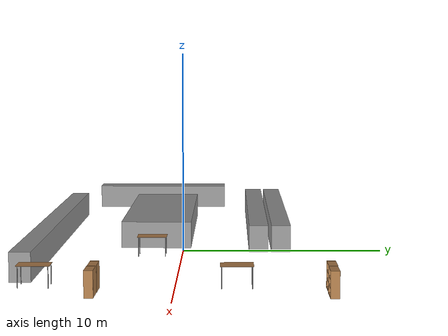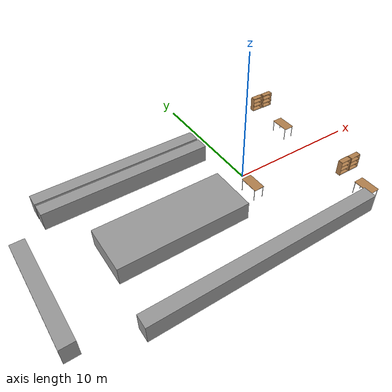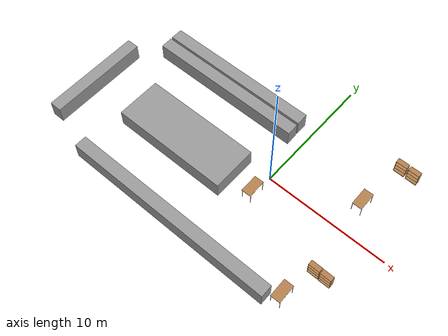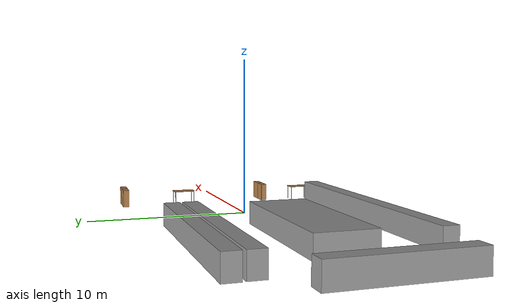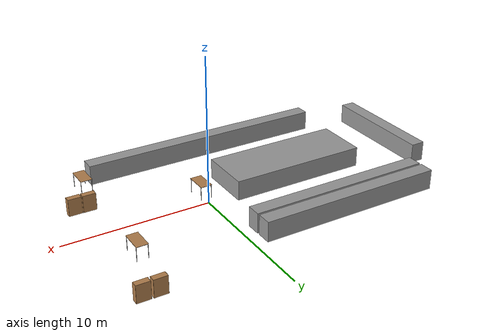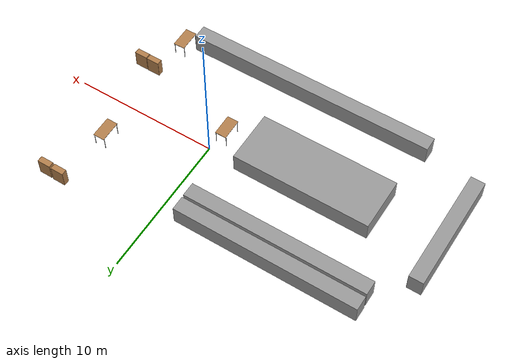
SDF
<?xml version='1.0'?>
<sdf version='1.7'>
  <model name='model_editor'>
    <link name='link_0'>
      <inertial>
        <mass>18.0708</mass>
        <inertia>
          <ixx>4.46291</ixx>
          <ixy>0</ixy>
          <ixz>0</ixz>
          <iyy>253.408</iyy>
          <iyz>0</iyz>
          <izz>251.957</izz>
        </inertia>
        <pose>0 0 0 0 -0 0</pose>
      </inertial>
      <pose>-7.47746 3.85814 0.409871 0 -0 0</pose>
      <visual name='visual'>
        <pose>0 0 0 0 -0 0</pose>
        <geometry>
          <box>
            <size>12.8963 1 1.40129</size>
          </box>
        </geometry>
        <material>
          <lighting>1</lighting>
          <script>
            <uri>file://media/materials/scripts/gazebo.material</uri>
            <name>Gazebo/Grey</name>
          </script>
          <shader type='pixel'/>
        </material>
        <transparency>0</transparency>
        <cast_shadows>1</cast_shadows>
      </visual>
      <collision name='collision'>
        <laser_retro>0</laser_retro>
        <max_contacts>10</max_contacts>
        <pose>0 0 0 0 -0 0</pose>
        <geometry>
          <box>
            <size>12.8963 1 1.40129</size>
          </box>
        </geometry>
        <surface>
          <friction>
            <ode>
              <mu>1</mu>
              <mu2>1</mu2>
              <fdir1>0 0 0</fdir1>
              <slip1>0</slip1>
              <slip2>0</slip2>
            </ode>
            <torsional>
              <coefficient>1</coefficient>
              <patch_radius>0</patch_radius>
              <surface_radius>0</surface_radius>
              <use_patch_radius>1</use_patch_radius>
              <ode>
                <slip>0</slip>
              </ode>
            </torsional>
          </friction>
          <bounce>
            <restitution_coefficient>0</restitution_coefficient>
            <threshold>1e+06</threshold>
          </bounce>
          <contact>
            <collide_without_contact>0</collide_without_contact>
            <collide_without_contact_bitmask>1</collide_without_contact_bitmask>
            <collide_bitmask>1</collide_bitmask>
            <ode>
              <soft_cfm>0</soft_cfm>
              <soft_erp>0.2</soft_erp>
              <kp>1e+13</kp>
              <kd>1</kd>
              <max_vel>0.01</max_vel>
              <min_depth>0</min_depth>
            </ode>
            <bullet>
              <split_impulse>1</split_impulse>
              <split_impulse_penetration_threshold>-0.01</split_impulse_penetration_threshold>
              <soft_cfm>0</soft_cfm>
              <soft_erp>0.2</soft_erp>
              <kp>1e+13</kp>
              <kd>1</kd>
            </bullet>
          </contact>
        </surface>
      </collision>
    </link>
    <link name='link_0_clone'>
      <inertial>
        <mass>18.0708</mass>
        <inertia>
          <ixx>4.46291</ixx>
          <ixy>0</ixy>
          <ixz>0</ixz>
          <iyy>253.408</iyy>
          <iyz>0</iyz>
          <izz>251.957</izz>
        </inertia>
        <pose>0 0 0 0 -0 0</pose>
      </inertial>
      <pose>-7.49983 5.0254 0.40987 0 -0 0</pose>
      <visual name='visual'>
        <pose>0 0 0 0 -0 0</pose>
        <geometry>
          <box>
            <size>12.8963 1 1.40129</size>
          </box>
        </geometry>
        <material>
          <lighting>1</lighting>
          <script>
            <uri>file://media/materials/scripts/gazebo.material</uri>
            <name>Gazebo/Grey</name>
          </script>
          <shader type='pixel'/>
        </material>
        <transparency>0</transparency>
        <cast_shadows>1</cast_shadows>
      </visual>
      <collision name='collision'>
        <laser_retro>0</laser_retro>
        <max_contacts>10</max_contacts>
        <pose>0 0 0 0 -0 0</pose>
        <geometry>
          <box>
            <size>12.8963 1 1.40129</size>
          </box>
        </geometry>
        <surface>
          <friction>
            <ode>
              <mu>1</mu>
              <mu2>1</mu2>
              <fdir1>0 0 0</fdir1>
              <slip1>0</slip1>
              <slip2>0</slip2>
            </ode>
            <torsional>
              <coefficient>1</coefficient>
              <patch_radius>0</patch_radius>
              <surface_radius>0</surface_radius>
              <use_patch_radius>1</use_patch_radius>
              <ode>
                <slip>0</slip>
              </ode>
            </torsional>
          </friction>
          <bounce>
            <restitution_coefficient>0</restitution_coefficient>
            <threshold>1e+06</threshold>
          </bounce>
          <contact>
            <collide_without_contact>0</collide_without_contact>
            <collide_without_contact_bitmask>1</collide_without_contact_bitmask>
            <collide_bitmask>1</collide_bitmask>
            <ode>
              <soft_cfm>0</soft_cfm>
              <soft_erp>0.2</soft_erp>
              <kp>1e+13</kp>
              <kd>1</kd>
              <max_vel>0.01</max_vel>
              <min_depth>0</min_depth>
            </ode>
            <bullet>
              <split_impulse>1</split_impulse>
              <split_impulse_penetration_threshold>-0.01</split_impulse_penetration_threshold>
              <soft_cfm>0</soft_cfm>
              <soft_erp>0.2</soft_erp>
              <kp>1e+13</kp>
              <kd>1</kd>
            </bullet>
          </contact>
        </surface>
      </collision>
    </link>
    <link name='link_0_clone_0'>
      <inertial>
        <mass>24.7173</mass>
        <inertia>
          <ixx>6.10438</ixx>
          <ixy>0</ixy>
          <ixz>0</ixz>
          <iyy>644.956</iyy>
          <iyz>0</iyz>
          <izz>642.971</izz>
        </inertia>
        <pose>0 0 0 0 -0 0</pose>
      </inertial>
      <pose>-3.33593 -7.13954 0.40987 0 -0 0</pose>
      <visual name='visual'>
        <pose>0 0 0 0 -0 0</pose>
        <geometry>
          <box>
            <size>17.6396 1 1.40129</size>
          </box>
        </geometry>
        <material>
          <lighting>1</lighting>
          <script>
            <uri>file://media/materials/scripts/gazebo.material</uri>
            <name>Gazebo/Grey</name>
          </script>
          <shader type='pixel'/>
        </material>
        <transparency>0</transparency>
        <cast_shadows>1</cast_shadows>
      </visual>
      <collision name='collision'>
        <laser_retro>0</laser_retro>
        <max_contacts>10</max_contacts>
        <pose>0 0 0 0 -0 0</pose>
        <geometry>
          <box>
            <size>17.6396 1 1.40129</size>
          </box>
        </geometry>
        <surface>
          <friction>
            <ode>
              <mu>1</mu>
              <mu2>1</mu2>
              <fdir1>0 0 0</fdir1>
              <slip1>0</slip1>
              <slip2>0</slip2>
            </ode>
            <torsional>
              <coefficient>1</coefficient>
              <patch_radius>0</patch_radius>
              <surface_radius>0</surface_radius>
              <use_patch_radius>1</use_patch_radius>
              <ode>
                <slip>0</slip>
              </ode>
            </torsional>
          </friction>
          <bounce>
            <restitution_coefficient>0</restitution_coefficient>
            <threshold>1e+06</threshold>
          </bounce>
          <contact>
            <collide_without_contact>0</collide_without_contact>
            <collide_without_contact_bitmask>1</collide_without_contact_bitmask>
            <collide_bitmask>1</collide_bitmask>
            <ode>
              <soft_cfm>0</soft_cfm>
              <soft_erp>0.2</soft_erp>
              <kp>1e+13</kp>
              <kd>1</kd>
              <max_vel>0.01</max_vel>
              <min_depth>0</min_depth>
            </ode>
            <bullet>
              <split_impulse>1</split_impulse>
              <split_impulse_penetration_threshold>-0.01</split_impulse_penetration_threshold>
              <soft_cfm>0</soft_cfm>
              <soft_erp>0.2</soft_erp>
              <kp>1e+13</kp>
              <kd>1</kd>
            </bullet>
          </contact>
        </surface>
      </collision>
    </link>
    <link name='link_0_clone_1'>
      <inertial>
        <mass>50.1155</mass>
        <inertia>
          <ixx>65.1768</ixx>
          <ixy>0</ixy>
          <ixz>0</ixz>
          <iyy>399.775</iyy>
          <iyz>0</iyz>
          <izz>448.55</izz>
        </inertia>
        <pose>0 0 0 0 -0 0</pose>
      </inertial>
      <pose>-6.90095 -1.54559 0.40987 0 -0 0</pose>
      <visual name='visual'>
        <pose>0 0 0 0 -0 0</pose>
        <geometry>
          <box>
            <size>9.68304 3.69361 1.40129</size>
          </box>
        </geometry>
        <material>
          <lighting>1</lighting>
          <script>
            <uri>file://media/materials/scripts/gazebo.material</uri>
            <name>Gazebo/Grey</name>
          </script>
          <shader type='pixel'/>
        </material>
        <transparency>0</transparency>
        <cast_shadows>1</cast_shadows>
      </visual>
      <collision name='collision'>
        <laser_retro>0</laser_retro>
        <max_contacts>10</max_contacts>
        <pose>0 0 0 0 -0 0</pose>
        <geometry>
          <box>
            <size>9.68304 3.69361 1.40129</size>
          </box>
        </geometry>
        <surface>
          <friction>
            <ode>
              <mu>1</mu>
              <mu2>1</mu2>
              <fdir1>0 0 0</fdir1>
              <slip1>0</slip1>
              <slip2>0</slip2>
            </ode>
            <torsional>
              <coefficient>1</coefficient>
              <patch_radius>0</patch_radius>
              <surface_radius>0</surface_radius>
              <use_patch_radius>1</use_patch_radius>
              <ode>
                <slip>0</slip>
              </ode>
            </torsional>
          </friction>
          <bounce>
            <restitution_coefficient>0</restitution_coefficient>
            <threshold>1e+06</threshold>
          </bounce>
          <contact>
            <collide_without_contact>0</collide_without_contact>
            <collide_without_contact_bitmask>1</collide_without_contact_bitmask>
            <collide_bitmask>1</collide_bitmask>
            <ode>
              <soft_cfm>0</soft_cfm>
              <soft_erp>0.2</soft_erp>
              <kp>1e+13</kp>
              <kd>1</kd>
              <max_vel>0.01</max_vel>
              <min_depth>0</min_depth>
            </ode>
            <bullet>
              <split_impulse>1</split_impulse>
              <split_impulse_penetration_threshold>-0.01</split_impulse_penetration_threshold>
              <soft_cfm>0</soft_cfm>
              <soft_erp>0.2</soft_erp>
              <kp>1e+13</kp>
              <kd>1</kd>
            </bullet>
          </contact>
        </surface>
      </collision>
    </link>
    <link name='link_0_clone_2'>
      <inertial>
        <mass>11.5629</mass>
        <inertia>
          <ixx>2.85567</ixx>
          <ixy>0</ixy>
          <ixz>0</ixz>
          <iyy>67.506</iyy>
          <iyz>0</iyz>
          <izz>66.5775</izz>
        </inertia>
        <pose>0 0 0 0 -0 0</pose>
      </inertial>
      <pose>-15.8863 -2.1349 0.40987 0 0 -1.57051</pose>
      <visual name='visual'>
        <pose>0 0 0 0 -0 0</pose>
        <geometry>
          <box>
            <size>8.25192 1 1.40129</size>
          </box>
        </geometry>
        <material>
          <lighting>1</lighting>
          <script>
            <uri>file://media/materials/scripts/gazebo.material</uri>
            <name>Gazebo/Grey</name>
          </script>
          <shader type='pixel'/>
        </material>
        <transparency>0</transparency>
        <cast_shadows>1</cast_shadows>
      </visual>
      <collision name='collision'>
        <laser_retro>0</laser_retro>
        <max_contacts>10</max_contacts>
        <pose>0 0 0 0 -0 0</pose>
        <geometry>
          <box>
            <size>8.25192 1 1.40129</size>
          </box>
        </geometry>
        <surface>
          <friction>
            <ode>
              <mu>1</mu>
              <mu2>1</mu2>
              <fdir1>0 0 0</fdir1>
              <slip1>0</slip1>
              <slip2>0</slip2>
            </ode>
            <torsional>
              <coefficient>1</coefficient>
              <patch_radius>0</patch_radius>
              <surface_radius>0</surface_radius>
              <use_patch_radius>1</use_patch_radius>
              <ode>
                <slip>0</slip>
              </ode>
            </torsional>
          </friction>
          <bounce>
            <restitution_coefficient>0</restitution_coefficient>
            <threshold>1e+06</threshold>
          </bounce>
          <contact>
            <collide_without_contact>0</collide_without_contact>
            <collide_without_contact_bitmask>1</collide_without_contact_bitmask>
            <collide_bitmask>1</collide_bitmask>
            <ode>
              <soft_cfm>0</soft_cfm>
              <soft_erp>0.2</soft_erp>
              <kp>1e+13</kp>
              <kd>1</kd>
              <max_vel>0.01</max_vel>
              <min_depth>0</min_depth>
            </ode>
            <bullet>
              <split_impulse>1</split_impulse>
              <split_impulse_penetration_threshold>-0.01</split_impulse_penetration_threshold>
              <soft_cfm>0</soft_cfm>
              <soft_erp>0.2</soft_erp>
              <kp>1e+13</kp>
              <kd>1</kd>
            </bullet>
          </contact>
        </surface>
      </collision>
    </link>
    <model name='bookshelf'>
      <static>1</static>
      <link name='link'>
        <inertial>
          <mass>1</mass>
        </inertial>
        <collision name='back'>
          <pose>0 0.005 0.6 0 -0 0</pose>
          <geometry>
            <box>
              <size>0.9 0.01 1.2</size>
            </box>
          </geometry>
        </collision>
        <visual name='visual1'>
          <pose>0 0.005 0.6 0 -0 0</pose>
          <geometry>
            <box>
              <size>0.9 0.01 1.2</size>
            </box>
          </geometry>
          <material>
            <script>
              <uri>file://media/materials/scripts/gazebo.material</uri>
              <name>Gazebo/Wood</name>
            </script>
          </material>
        </visual>
        <collision name='left_side'>
          <pose>0.45 -0.195 0.6 0 -0 0</pose>
          <geometry>
            <box>
              <size>0.02 0.4 1.2</size>
            </box>
          </geometry>
        </collision>
        <visual name='visual2'>
          <pose>0.45 -0.195 0.6 0 -0 0</pose>
          <geometry>
            <box>
              <size>0.02 0.4 1.2</size>
            </box>
          </geometry>
          <material>
            <script>
              <uri>file://media/materials/scripts/gazebo.material</uri>
              <name>Gazebo/Wood</name>
            </script>
          </material>
        </visual>
        <collision name='right_side'>
          <pose>-0.45 -0.195 0.6 0 -0 0</pose>
          <geometry>
            <box>
              <size>0.02 0.4 1.2</size>
            </box>
          </geometry>
        </collision>
        <visual name='visual3'>
          <pose>-0.45 -0.195 0.6 0 -0 0</pose>
          <geometry>
            <box>
              <size>0.02 0.4 1.2</size>
            </box>
          </geometry>
          <material>
            <script>
              <uri>file://media/materials/scripts/gazebo.material</uri>
              <name>Gazebo/Wood</name>
            </script>
          </material>
        </visual>
        <collision name='bottom'>
          <pose>0 -0.195 0.03 0 -0 0</pose>
          <geometry>
            <box>
              <size>0.88 0.4 0.06</size>
            </box>
          </geometry>
        </collision>
        <visual name='visual4'>
          <pose>0 -0.195 0.03 0 -0 0</pose>
          <geometry>
            <box>
              <size>0.88 0.4 0.06</size>
            </box>
          </geometry>
          <material>
            <script>
              <uri>file://media/materials/scripts/gazebo.material</uri>
              <name>Gazebo/Wood</name>
            </script>
          </material>
        </visual>
        <collision name='top'>
          <pose>0 -0.195 1.19 0 -0 0</pose>
          <geometry>
            <box>
              <size>0.88 0.4 0.02</size>
            </box>
          </geometry>
        </collision>
        <visual name='visual5'>
          <pose>0 -0.195 1.19 0 -0 0</pose>
          <geometry>
            <box>
              <size>0.88 0.4 0.02</size>
            </box>
          </geometry>
          <material>
            <script>
              <uri>file://media/materials/scripts/gazebo.material</uri>
              <name>Gazebo/Wood</name>
            </script>
          </material>
        </visual>
        <collision name='low_shelf'>
          <pose>0 -0.195 0.43 0 -0 0</pose>
          <geometry>
            <box>
              <size>0.88 0.4 0.02</size>
            </box>
          </geometry>
        </collision>
        <visual name='visual6'>
          <pose>0 -0.195 0.43 0 -0 0</pose>
          <geometry>
            <box>
              <size>0.88 0.4 0.02</size>
            </box>
          </geometry>
          <material>
            <script>
              <uri>file://media/materials/scripts/gazebo.material</uri>
              <name>Gazebo/Wood</name>
            </script>
          </material>
        </visual>
        <collision name='high_shelf'>
          <pose>0 -0.195 0.8 0 -0 0</pose>
          <geometry>
            <box>
              <size>0.88 0.4 0.02</size>
            </box>
          </geometry>
        </collision>
        <visual name='visual7'>
          <pose>0 -0.195 0.8 0 -0 0</pose>
          <geometry>
            <box>
              <size>0.88 0.4 0.02</size>
            </box>
          </geometry>
          <material>
            <script>
              <uri>file://media/materials/scripts/gazebo.material</uri>
              <name>Gazebo/Wood</name>
            </script>
          </material>
        </visual>
      </link>
      <pose>6.78918 -3.41722 -0.292765 0 -0 0</pose>
    </model>
    <model name='bookshelf_clone'>
      <static>1</static>
      <link name='link'>
        <inertial>
          <mass>1</mass>
        </inertial>
        <collision name='back'>
          <pose>0 0.005 0.6 0 -0 0</pose>
          <geometry>
            <box>
              <size>0.9 0.01 1.2</size>
            </box>
          </geometry>
        </collision>
        <visual name='visual1'>
          <pose>0 0.005 0.6 0 -0 0</pose>
          <geometry>
            <box>
              <size>0.9 0.01 1.2</size>
            </box>
          </geometry>
          <material>
            <script>
              <uri>file://media/materials/scripts/gazebo.material</uri>
              <name>Gazebo/Wood</name>
            </script>
          </material>
        </visual>
        <collision name='left_side'>
          <pose>0.45 -0.195 0.6 0 -0 0</pose>
          <geometry>
            <box>
              <size>0.02 0.4 1.2</size>
            </box>
          </geometry>
        </collision>
        <visual name='visual2'>
          <pose>0.45 -0.195 0.6 0 -0 0</pose>
          <geometry>
            <box>
              <size>0.02 0.4 1.2</size>
            </box>
          </geometry>
          <material>
            <script>
              <uri>file://media/materials/scripts/gazebo.material</uri>
              <name>Gazebo/Wood</name>
            </script>
          </material>
        </visual>
        <collision name='right_side'>
          <pose>-0.45 -0.195 0.6 0 -0 0</pose>
          <geometry>
            <box>
              <size>0.02 0.4 1.2</size>
            </box>
          </geometry>
        </collision>
        <visual name='visual3'>
          <pose>-0.45 -0.195 0.6 0 -0 0</pose>
          <geometry>
            <box>
              <size>0.02 0.4 1.2</size>
            </box>
          </geometry>
          <material>
            <script>
              <uri>file://media/materials/scripts/gazebo.material</uri>
              <name>Gazebo/Wood</name>
            </script>
          </material>
        </visual>
        <collision name='bottom'>
          <pose>0 -0.195 0.03 0 -0 0</pose>
          <geometry>
            <box>
              <size>0.88 0.4 0.06</size>
            </box>
          </geometry>
        </collision>
        <visual name='visual4'>
          <pose>0 -0.195 0.03 0 -0 0</pose>
          <geometry>
            <box>
              <size>0.88 0.4 0.06</size>
            </box>
          </geometry>
          <material>
            <script>
              <uri>file://media/materials/scripts/gazebo.material</uri>
              <name>Gazebo/Wood</name>
            </script>
          </material>
        </visual>
        <collision name='top'>
          <pose>0 -0.195 1.19 0 -0 0</pose>
          <geometry>
            <box>
              <size>0.88 0.4 0.02</size>
            </box>
          </geometry>
        </collision>
        <visual name='visual5'>
          <pose>0 -0.195 1.19 0 -0 0</pose>
          <geometry>
            <box>
              <size>0.88 0.4 0.02</size>
            </box>
          </geometry>
          <material>
            <script>
              <uri>file://media/materials/scripts/gazebo.material</uri>
              <name>Gazebo/Wood</name>
            </script>
          </material>
        </visual>
        <collision name='low_shelf'>
          <pose>0 -0.195 0.43 0 -0 0</pose>
          <geometry>
            <box>
              <size>0.88 0.4 0.02</size>
            </box>
          </geometry>
        </collision>
        <visual name='visual6'>
          <pose>0 -0.195 0.43 0 -0 0</pose>
          <geometry>
            <box>
              <size>0.88 0.4 0.02</size>
            </box>
          </geometry>
          <material>
            <script>
              <uri>file://media/materials/scripts/gazebo.material</uri>
              <name>Gazebo/Wood</name>
            </script>
          </material>
        </visual>
        <collision name='high_shelf'>
          <pose>0 -0.195 0.8 0 -0 0</pose>
          <geometry>
            <box>
              <size>0.88 0.4 0.02</size>
            </box>
          </geometry>
        </collision>
        <visual name='visual7'>
          <pose>0 -0.195 0.8 0 -0 0</pose>
          <geometry>
            <box>
              <size>0.88 0.4 0.02</size>
            </box>
          </geometry>
          <material>
            <script>
              <uri>file://media/materials/scripts/gazebo.material</uri>
              <name>Gazebo/Wood</name>
            </script>
          </material>
        </visual>
      </link>
      <pose>6.74104 7.03907 -0.292765 0 -0 0</pose>
    </model>
    <model name='bookshelf_clone_0'>
      <static>1</static>
      <link name='link'>
        <inertial>
          <mass>1</mass>
        </inertial>
        <collision name='back'>
          <pose>0 0.005 0.6 0 -0 0</pose>
          <geometry>
            <box>
              <size>0.9 0.01 1.2</size>
            </box>
          </geometry>
        </collision>
        <visual name='visual1'>
          <pose>0 0.005 0.6 0 -0 0</pose>
          <geometry>
            <box>
              <size>0.9 0.01 1.2</size>
            </box>
          </geometry>
          <material>
            <script>
              <uri>file://media/materials/scripts/gazebo.material</uri>
              <name>Gazebo/Wood</name>
            </script>
          </material>
        </visual>
        <collision name='left_side'>
          <pose>0.45 -0.195 0.6 0 -0 0</pose>
          <geometry>
            <box>
              <size>0.02 0.4 1.2</size>
            </box>
          </geometry>
        </collision>
        <visual name='visual2'>
          <pose>0.45 -0.195 0.6 0 -0 0</pose>
          <geometry>
            <box>
              <size>0.02 0.4 1.2</size>
            </box>
          </geometry>
          <material>
            <script>
              <uri>file://media/materials/scripts/gazebo.material</uri>
              <name>Gazebo/Wood</name>
            </script>
          </material>
        </visual>
        <collision name='right_side'>
          <pose>-0.45 -0.195 0.6 0 -0 0</pose>
          <geometry>
            <box>
              <size>0.02 0.4 1.2</size>
            </box>
          </geometry>
        </collision>
        <visual name='visual3'>
          <pose>-0.45 -0.195 0.6 0 -0 0</pose>
          <geometry>
            <box>
              <size>0.02 0.4 1.2</size>
            </box>
          </geometry>
          <material>
            <script>
              <uri>file://media/materials/scripts/gazebo.material</uri>
              <name>Gazebo/Wood</name>
            </script>
          </material>
        </visual>
        <collision name='bottom'>
          <pose>0 -0.195 0.03 0 -0 0</pose>
          <geometry>
            <box>
              <size>0.88 0.4 0.06</size>
            </box>
          </geometry>
        </collision>
        <visual name='visual4'>
          <pose>0 -0.195 0.03 0 -0 0</pose>
          <geometry>
            <box>
              <size>0.88 0.4 0.06</size>
            </box>
          </geometry>
          <material>
            <script>
              <uri>file://media/materials/scripts/gazebo.material</uri>
              <name>Gazebo/Wood</name>
            </script>
          </material>
        </visual>
        <collision name='top'>
          <pose>0 -0.195 1.19 0 -0 0</pose>
          <geometry>
            <box>
              <size>0.88 0.4 0.02</size>
            </box>
          </geometry>
        </collision>
        <visual name='visual5'>
          <pose>0 -0.195 1.19 0 -0 0</pose>
          <geometry>
            <box>
              <size>0.88 0.4 0.02</size>
            </box>
          </geometry>
          <material>
            <script>
              <uri>file://media/materials/scripts/gazebo.material</uri>
              <name>Gazebo/Wood</name>
            </script>
          </material>
        </visual>
        <collision name='low_shelf'>
          <pose>0 -0.195 0.43 0 -0 0</pose>
          <geometry>
            <box>
              <size>0.88 0.4 0.02</size>
            </box>
          </geometry>
        </collision>
        <visual name='visual6'>
          <pose>0 -0.195 0.43 0 -0 0</pose>
          <geometry>
            <box>
              <size>0.88 0.4 0.02</size>
            </box>
          </geometry>
          <material>
            <script>
              <uri>file://media/materials/scripts/gazebo.material</uri>
              <name>Gazebo/Wood</name>
            </script>
          </material>
        </visual>
        <collision name='high_shelf'>
          <pose>0 -0.195 0.8 0 -0 0</pose>
          <geometry>
            <box>
              <size>0.88 0.4 0.02</size>
            </box>
          </geometry>
        </collision>
        <visual name='visual7'>
          <pose>0 -0.195 0.8 0 -0 0</pose>
          <geometry>
            <box>
              <size>0.88 0.4 0.02</size>
            </box>
          </geometry>
          <material>
            <script>
              <uri>file://media/materials/scripts/gazebo.material</uri>
              <name>Gazebo/Wood</name>
            </script>
          </material>
        </visual>
      </link>
      <pose>7.75648 -3.43464 -0.292765 0 -0 0</pose>
    </model>
    <model name='bookshelf_clone_1'>
      <static>1</static>
      <link name='link'>
        <inertial>
          <mass>1</mass>
        </inertial>
        <collision name='back'>
          <pose>0 0.005 0.6 0 -0 0</pose>
          <geometry>
            <box>
              <size>0.9 0.01 1.2</size>
            </box>
          </geometry>
        </collision>
        <visual name='visual1'>
          <pose>0 0.005 0.6 0 -0 0</pose>
          <geometry>
            <box>
              <size>0.9 0.01 1.2</size>
            </box>
          </geometry>
          <material>
            <script>
              <uri>file://media/materials/scripts/gazebo.material</uri>
              <name>Gazebo/Wood</name>
            </script>
          </material>
        </visual>
        <collision name='left_side'>
          <pose>0.45 -0.195 0.6 0 -0 0</pose>
          <geometry>
            <box>
              <size>0.02 0.4 1.2</size>
            </box>
          </geometry>
        </collision>
        <visual name='visual2'>
          <pose>0.45 -0.195 0.6 0 -0 0</pose>
          <geometry>
            <box>
              <size>0.02 0.4 1.2</size>
            </box>
          </geometry>
          <material>
            <script>
              <uri>file://media/materials/scripts/gazebo.material</uri>
              <name>Gazebo/Wood</name>
            </script>
          </material>
        </visual>
        <collision name='right_side'>
          <pose>-0.45 -0.195 0.6 0 -0 0</pose>
          <geometry>
            <box>
              <size>0.02 0.4 1.2</size>
            </box>
          </geometry>
        </collision>
        <visual name='visual3'>
          <pose>-0.45 -0.195 0.6 0 -0 0</pose>
          <geometry>
            <box>
              <size>0.02 0.4 1.2</size>
            </box>
          </geometry>
          <material>
            <script>
              <uri>file://media/materials/scripts/gazebo.material</uri>
              <name>Gazebo/Wood</name>
            </script>
          </material>
        </visual>
        <collision name='bottom'>
          <pose>0 -0.195 0.03 0 -0 0</pose>
          <geometry>
            <box>
              <size>0.88 0.4 0.06</size>
            </box>
          </geometry>
        </collision>
        <visual name='visual4'>
          <pose>0 -0.195 0.03 0 -0 0</pose>
          <geometry>
            <box>
              <size>0.88 0.4 0.06</size>
            </box>
          </geometry>
          <material>
            <script>
              <uri>file://media/materials/scripts/gazebo.material</uri>
              <name>Gazebo/Wood</name>
            </script>
          </material>
        </visual>
        <collision name='top'>
          <pose>0 -0.195 1.19 0 -0 0</pose>
          <geometry>
            <box>
              <size>0.88 0.4 0.02</size>
            </box>
          </geometry>
        </collision>
        <visual name='visual5'>
          <pose>0 -0.195 1.19 0 -0 0</pose>
          <geometry>
            <box>
              <size>0.88 0.4 0.02</size>
            </box>
          </geometry>
          <material>
            <script>
              <uri>file://media/materials/scripts/gazebo.material</uri>
              <name>Gazebo/Wood</name>
            </script>
          </material>
        </visual>
        <collision name='low_shelf'>
          <pose>0 -0.195 0.43 0 -0 0</pose>
          <geometry>
            <box>
              <size>0.88 0.4 0.02</size>
            </box>
          </geometry>
        </collision>
        <visual name='visual6'>
          <pose>0 -0.195 0.43 0 -0 0</pose>
          <geometry>
            <box>
              <size>0.88 0.4 0.02</size>
            </box>
          </geometry>
          <material>
            <script>
              <uri>file://media/materials/scripts/gazebo.material</uri>
              <name>Gazebo/Wood</name>
            </script>
          </material>
        </visual>
        <collision name='high_shelf'>
          <pose>0 -0.195 0.8 0 -0 0</pose>
          <geometry>
            <box>
              <size>0.88 0.4 0.02</size>
            </box>
          </geometry>
        </collision>
        <visual name='visual7'>
          <pose>0 -0.195 0.8 0 -0 0</pose>
          <geometry>
            <box>
              <size>0.88 0.4 0.02</size>
            </box>
          </geometry>
          <material>
            <script>
              <uri>file://media/materials/scripts/gazebo.material</uri>
              <name>Gazebo/Wood</name>
            </script>
          </material>
        </visual>
      </link>
      <pose>7.7779 7.01971 -0.292765 0 -0 0</pose>
    </model>
    <model name='table'>
      <static>1</static>
      <link name='link'>
        <collision name='surface'>
          <pose>0 0 1 0 -0 0</pose>
          <geometry>
            <box>
              <size>1.5 0.8 0.03</size>
            </box>
          </geometry>
          <surface>
            <friction>
              <ode>
                <mu>0.6</mu>
                <mu2>0.6</mu2>
              </ode>
            </friction>
          </surface>
        </collision>
        <visual name='visual1'>
          <pose>0 0 1 0 -0 0</pose>
          <geometry>
            <box>
              <size>1.5 0.8 0.03</size>
            </box>
          </geometry>
          <material>
            <script>
              <uri>file://media/materials/scripts/gazebo.material</uri>
              <name>Gazebo/Wood</name>
            </script>
          </material>
        </visual>
        <collision name='front_left_leg'>
          <pose>0.68 0.38 0.5 0 -0 0</pose>
          <geometry>
            <cylinder>
              <radius>0.02</radius>
              <length>1</length>
            </cylinder>
          </geometry>
        </collision>
        <visual name='front_left_leg'>
          <pose>0.68 0.38 0.5 0 -0 0</pose>
          <geometry>
            <cylinder>
              <radius>0.02</radius>
              <length>1</length>
            </cylinder>
          </geometry>
          <material>
            <script>
              <uri>file://media/materials/scripts/gazebo.material</uri>
              <name>Gazebo/Grey</name>
            </script>
          </material>
        </visual>
        <collision name='front_right_leg'>
          <pose>0.68 -0.38 0.5 0 -0 0</pose>
          <geometry>
            <cylinder>
              <radius>0.02</radius>
              <length>1</length>
            </cylinder>
          </geometry>
        </collision>
        <visual name='front_right_leg'>
          <pose>0.68 -0.38 0.5 0 -0 0</pose>
          <geometry>
            <cylinder>
              <radius>0.02</radius>
              <length>1</length>
            </cylinder>
          </geometry>
          <material>
            <script>
              <uri>file://media/materials/scripts/gazebo.material</uri>
              <name>Gazebo/Grey</name>
            </script>
          </material>
        </visual>
        <collision name='back_right_leg'>
          <pose>-0.68 -0.38 0.5 0 -0 0</pose>
          <geometry>
            <cylinder>
              <radius>0.02</radius>
              <length>1</length>
            </cylinder>
          </geometry>
        </collision>
        <visual name='back_right_leg'>
          <pose>-0.68 -0.38 0.5 0 -0 0</pose>
          <geometry>
            <cylinder>
              <radius>0.02</radius>
              <length>1</length>
            </cylinder>
          </geometry>
          <material>
            <script>
              <uri>file://media/materials/scripts/gazebo.material</uri>
              <name>Gazebo/Grey</name>
            </script>
          </material>
        </visual>
        <collision name='back_left_leg'>
          <pose>-0.68 0.38 0.5 0 -0 0</pose>
          <geometry>
            <cylinder>
              <radius>0.02</radius>
              <length>1</length>
            </cylinder>
          </geometry>
        </collision>
        <visual name='back_left_leg'>
          <pose>-0.68 0.38 0.5 0 -0 0</pose>
          <geometry>
            <cylinder>
              <radius>0.02</radius>
              <length>1</length>
            </cylinder>
          </geometry>
          <material>
            <script>
              <uri>file://media/materials/scripts/gazebo.material</uri>
              <name>Gazebo/Grey</name>
            </script>
          </material>
        </visual>
      </link>
      <pose>-0.313936 -1.6083 -0.292765 0 0 -1.56029</pose>
    </model>
    <model name='table_clone'>
      <static>1</static>
      <link name='link'>
        <collision name='surface'>
          <pose>0 0 1 0 -0 0</pose>
          <geometry>
            <box>
              <size>1.5 0.8 0.03</size>
            </box>
          </geometry>
          <surface>
            <friction>
              <ode>
                <mu>0.6</mu>
                <mu2>0.6</mu2>
              </ode>
            </friction>
          </surface>
        </collision>
        <visual name='visual1'>
          <pose>0 0 1 0 -0 0</pose>
          <geometry>
            <box>
              <size>1.5 0.8 0.03</size>
            </box>
          </geometry>
          <material>
            <script>
              <uri>file://media/materials/scripts/gazebo.material</uri>
              <name>Gazebo/Wood</name>
            </script>
          </material>
        </visual>
        <collision name='front_left_leg'>
          <pose>0.68 0.38 0.5 0 -0 0</pose>
          <geometry>
            <cylinder>
              <radius>0.02</radius>
              <length>1</length>
            </cylinder>
          </geometry>
        </collision>
        <visual name='front_left_leg'>
          <pose>0.68 0.38 0.5 0 -0 0</pose>
          <geometry>
            <cylinder>
              <radius>0.02</radius>
              <length>1</length>
            </cylinder>
          </geometry>
          <material>
            <script>
              <uri>file://media/materials/scripts/gazebo.material</uri>
              <name>Gazebo/Grey</name>
            </script>
          </material>
        </visual>
        <collision name='front_right_leg'>
          <pose>0.68 -0.38 0.5 0 -0 0</pose>
          <geometry>
            <cylinder>
              <radius>0.02</radius>
              <length>1</length>
            </cylinder>
          </geometry>
        </collision>
        <visual name='front_right_leg'>
          <pose>0.68 -0.38 0.5 0 -0 0</pose>
          <geometry>
            <cylinder>
              <radius>0.02</radius>
              <length>1</length>
            </cylinder>
          </geometry>
          <material>
            <script>
              <uri>file://media/materials/scripts/gazebo.material</uri>
              <name>Gazebo/Grey</name>
            </script>
          </material>
        </visual>
        <collision name='back_right_leg'>
          <pose>-0.68 -0.38 0.5 0 -0 0</pose>
          <geometry>
            <cylinder>
              <radius>0.02</radius>
              <length>1</length>
            </cylinder>
          </geometry>
        </collision>
        <visual name='back_right_leg'>
          <pose>-0.68 -0.38 0.5 0 -0 0</pose>
          <geometry>
            <cylinder>
              <radius>0.02</radius>
              <length>1</length>
            </cylinder>
          </geometry>
          <material>
            <script>
              <uri>file://media/materials/scripts/gazebo.material</uri>
              <name>Gazebo/Grey</name>
            </script>
          </material>
        </visual>
        <collision name='back_left_leg'>
          <pose>-0.68 0.38 0.5 0 -0 0</pose>
          <geometry>
            <cylinder>
              <radius>0.02</radius>
              <length>1</length>
            </cylinder>
          </geometry>
        </collision>
        <visual name='back_left_leg'>
          <pose>-0.68 0.38 0.5 0 -0 0</pose>
          <geometry>
            <cylinder>
              <radius>0.02</radius>
              <length>1</length>
            </cylinder>
          </geometry>
          <material>
            <script>
              <uri>file://media/materials/scripts/gazebo.material</uri>
              <name>Gazebo/Grey</name>
            </script>
          </material>
        </visual>
      </link>
      <pose>6.15213 -6.34003 -0.292765 0 0 -1.56029</pose>
    </model>
    <model name='table_clone_0'>
      <static>1</static>
      <link name='link'>
        <collision name='surface'>
          <pose>0 0 1 0 -0 0</pose>
          <geometry>
            <box>
              <size>1.5 0.8 0.03</size>
            </box>
          </geometry>
          <surface>
            <friction>
              <ode>
                <mu>0.6</mu>
                <mu2>0.6</mu2>
              </ode>
            </friction>
          </surface>
        </collision>
        <visual name='visual1'>
          <pose>0 0 1 0 -0 0</pose>
          <geometry>
            <box>
              <size>1.5 0.8 0.03</size>
            </box>
          </geometry>
          <material>
            <script>
              <uri>file://media/materials/scripts/gazebo.material</uri>
              <name>Gazebo/Wood</name>
            </script>
          </material>
        </visual>
        <collision name='front_left_leg'>
          <pose>0.68 0.38 0.5 0 -0 0</pose>
          <geometry>
            <cylinder>
              <radius>0.02</radius>
              <length>1</length>
            </cylinder>
          </geometry>
        </collision>
        <visual name='front_left_leg'>
          <pose>0.68 0.38 0.5 0 -0 0</pose>
          <geometry>
            <cylinder>
              <radius>0.02</radius>
              <length>1</length>
            </cylinder>
          </geometry>
          <material>
            <script>
              <uri>file://media/materials/scripts/gazebo.material</uri>
              <name>Gazebo/Grey</name>
            </script>
          </material>
        </visual>
        <collision name='front_right_leg'>
          <pose>0.68 -0.38 0.5 0 -0 0</pose>
          <geometry>
            <cylinder>
              <radius>0.02</radius>
              <length>1</length>
            </cylinder>
          </geometry>
        </collision>
        <visual name='front_right_leg'>
          <pose>0.68 -0.38 0.5 0 -0 0</pose>
          <geometry>
            <cylinder>
              <radius>0.02</radius>
              <length>1</length>
            </cylinder>
          </geometry>
          <material>
            <script>
              <uri>file://media/materials/scripts/gazebo.material</uri>
              <name>Gazebo/Grey</name>
            </script>
          </material>
        </visual>
        <collision name='back_right_leg'>
          <pose>-0.68 -0.38 0.5 0 -0 0</pose>
          <geometry>
            <cylinder>
              <radius>0.02</radius>
              <length>1</length>
            </cylinder>
          </geometry>
        </collision>
        <visual name='back_right_leg'>
          <pose>-0.68 -0.38 0.5 0 -0 0</pose>
          <geometry>
            <cylinder>
              <radius>0.02</radius>
              <length>1</length>
            </cylinder>
          </geometry>
          <material>
            <script>
              <uri>file://media/materials/scripts/gazebo.material</uri>
              <name>Gazebo/Grey</name>
            </script>
          </material>
        </visual>
        <collision name='back_left_leg'>
          <pose>-0.68 0.38 0.5 0 -0 0</pose>
          <geometry>
            <cylinder>
              <radius>0.02</radius>
              <length>1</length>
            </cylinder>
          </geometry>
        </collision>
        <visual name='back_left_leg'>
          <pose>-0.68 0.38 0.5 0 -0 0</pose>
          <geometry>
            <cylinder>
              <radius>0.02</radius>
              <length>1</length>
            </cylinder>
          </geometry>
          <material>
            <script>
              <uri>file://media/materials/scripts/gazebo.material</uri>
              <name>Gazebo/Grey</name>
            </script>
          </material>
        </visual>
      </link>
      <pose>6.19759 2.67789 -0.292765 0 0 -1.56029</pose>
    </model>
    <static>0</static>
    <allow_auto_disable>1</allow_auto_disable>
  </model>
</sdf>
